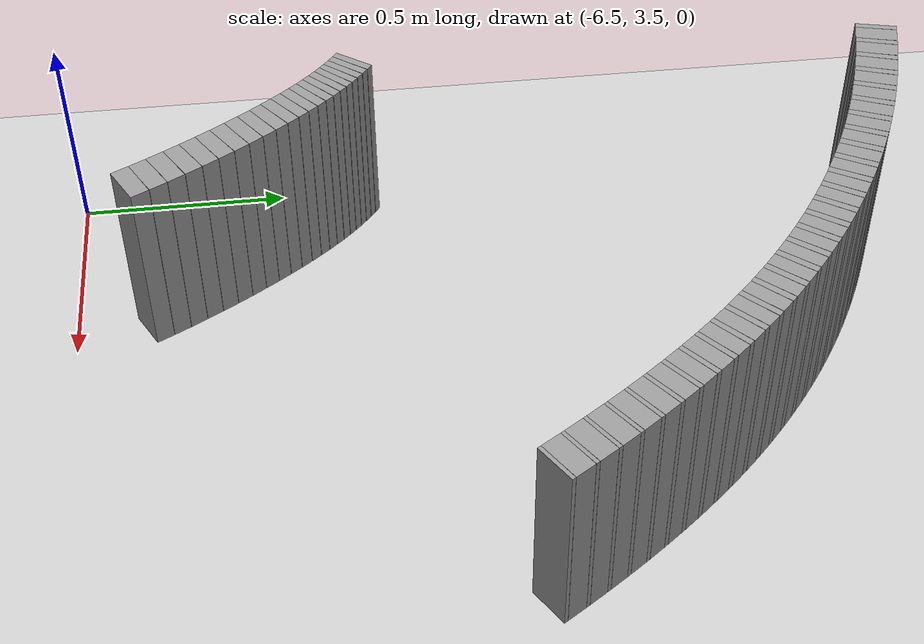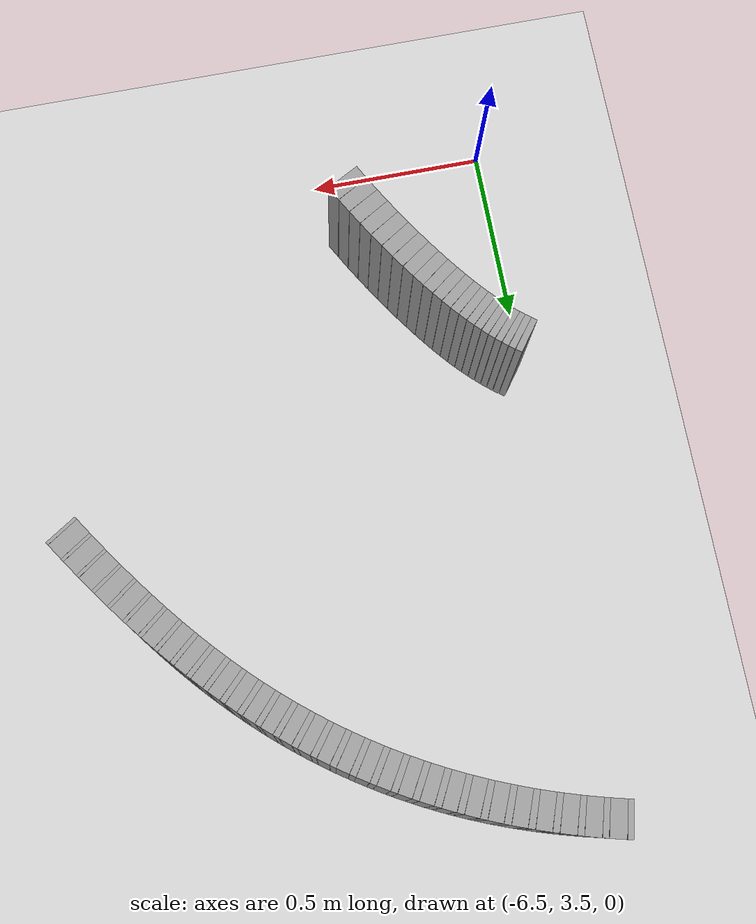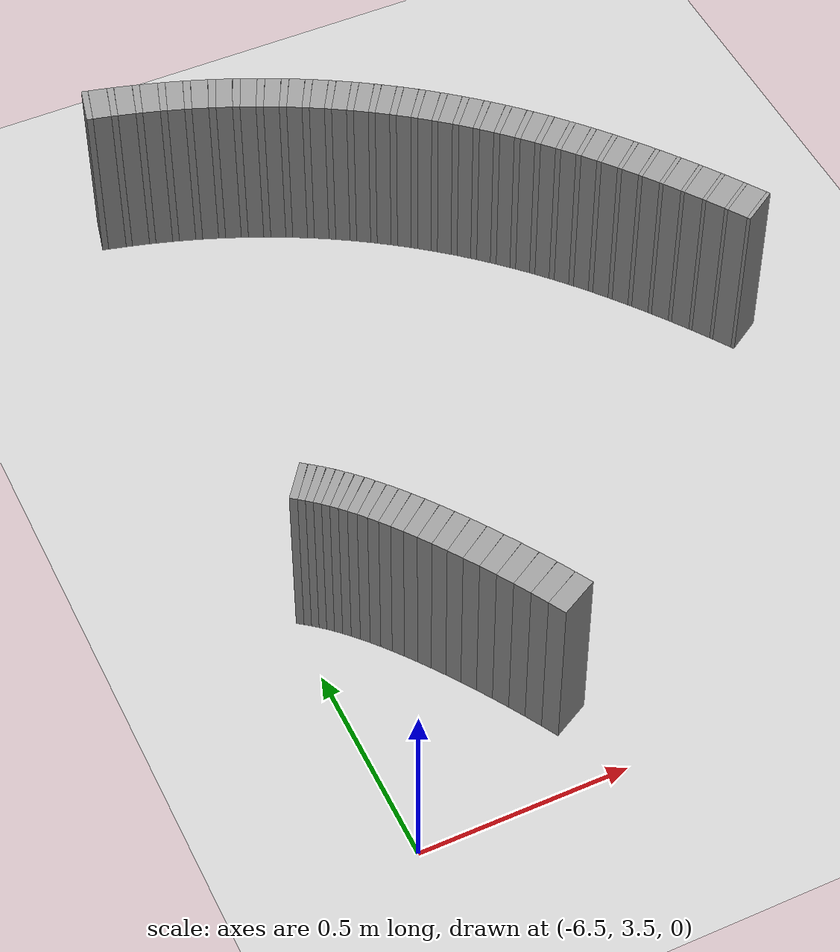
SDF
<sdf version="1.6">
 <world name="default">
  <include><uri>model://ground_plane</uri></include>
  <include><uri>model://sun</uri></include>
  <model name="wall_216_outward">
   <static>true</static>
   <link name="link">
    <collision name="collision">
     <geometry><box><size>0.044780924516160954 0.1 0.45</size></box></geometry>
    </collision>
    <visual name="visual">
     <geometry><box><size>0.044780924516160954 0.1 0.45</size></box></geometry>
     <material>
      <script><uri>file://media/materials/scripts/gazebo.material</uri><name>Gazebo/Gray</name></script>
     </material>
    </visual>
   </link>
   <pose>-6.06367031219288 3.68221405692426 0.225 0 0 2.0650732543696275</pose>
  </model>
  <model name="wall_217_outward">
   <static>true</static>
   <link name="link">
    <collision name="collision">
     <geometry><box><size>0.04440243816377379 0.1 0.45</size></box></geometry>
    </collision>
    <visual name="visual">
     <geometry><box><size>0.04440243816377379 0.1 0.45</size></box></geometry>
     <material>
      <script><uri>file://media/materials/scripts/gazebo.material</uri><name>Gazebo/Gray</name></script>
     </material>
    </visual>
   </link>
   <pose>-6.085157887914838 3.721285223233642 0.225 0 0 2.0822170441764327</pose>
  </model>
  <model name="wall_218_outward">
   <static>true</static>
   <link name="link">
    <collision name="collision">
     <geometry><box><size>0.04388804707926912 0.1 0.45</size></box></geometry>
    </collision>
    <visual name="visual">
     <geometry><box><size>0.04388804707926912 0.1 0.45</size></box></geometry>
     <material>
      <script><uri>file://media/materials/scripts/gazebo.material</uri><name>Gazebo/Gray</name></script>
     </material>
    </visual>
   </link>
   <pose>-6.107077686411589 3.7596022188813896 0.225 0 0 2.098722744135696</pose>
  </model>
  <model name="wall_219_outward">
   <static>true</static>
   <link name="link">
    <collision name="collision">
     <geometry><box><size>0.04318150597429379 0.1 0.45</size></box></geometry>
    </collision>
    <visual name="visual">
     <geometry><box><size>0.04318150597429379 0.1 0.45</size></box></geometry>
     <material>
      <script><uri>file://media/materials/scripts/gazebo.material</uri><name>Gazebo/Gray</name></script>
     </material>
    </visual>
   </link>
   <pose>-6.1293042536394005 3.797033967967364 0.225 0 0 2.1146797943452453</pose>
  </model>
  <model name="wall_220_outward">
   <static>true</static>
   <link name="link">
    <collision name="collision">
     <geometry><box><size>0.04224144139974984 0.1 0.45</size></box></geometry>
    </collision>
    <visual name="visual">
     <geometry><box><size>0.04224144139974984 0.1 0.45</size></box></geometry>
     <material>
      <script><uri>file://media/materials/scripts/gazebo.material</uri><name>Gazebo/Gray</name></script>
     </material>
    </visual>
   </link>
   <pose>-6.151685595551152 3.833410268380656 0.225 0 0 2.1302315081003766</pose>
  </model>
  <model name="wall_221_outward">
   <static>true</static>
   <link name="link">
    <collision name="collision">
     <geometry><box><size>0.04104221579817539 0.1 0.45</size></box></geometry>
    </collision>
    <visual name="visual">
     <geometry><box><size>0.04104221579817539 0.1 0.45</size></box></geometry>
     <material>
      <script><uri>file://media/materials/scripts/gazebo.material</uri><name>Gazebo/Gray</name></script>
     </material>
    </visual>
   </link>
   <pose>-6.174050987513845 3.8685347463617688 0.225 0 0 2.145585741667228</pose>
  </model>
  <model name="wall_222_outward">
   <static>true</static>
   <link name="link">
    <collision name="collision">
     <geometry><box><size>0.0395754504617135 0.1 0.45</size></box></geometry>
    </collision>
    <visual name="visual">
     <geometry><box><size>0.0395754504617135 0.1 0.45</size></box></geometry>
     <material>
      <script><uri>file://media/materials/scripts/gazebo.material</uri><name>Gazebo/Gray</name></script>
     </material>
    </visual>
   </link>
   <pose>-6.196219791889707 3.9021985215496997 0.225 0 0 2.160992154604465</pose>
  </model>
  <model name="wall_223_outward">
   <static>true</static>
   <link name="link">
    <collision name="collision">
     <geometry><box><size>0.037859299514203505 0.1 0.45</size></box></geometry>
    </collision>
    <visual name="visual">
     <geometry><box><size>0.037859299514203505 0.1 0.45</size></box></geometry>
     <material>
      <script><uri>file://media/materials/scripts/gazebo.material</uri><name>Gazebo/Gray</name></script>
     </material>
    </visual>
   </link>
   <pose>-6.2180132884366675 3.934198298757007 0.225 0 0 2.1767401949920258</pose>
  </model>
  <model name="wall_224_outward">
   <static>true</static>
   <link name="link">
    <collision name="collision">
     <geometry><box><size>0.03592979029418136 0.1 0.45</size></box></geometry>
    </collision>
    <visual name="visual">
     <geometry><box><size>0.03592979029418136 0.1 0.45</size></box></geometry>
     <material>
      <script><uri>file://media/materials/scripts/gazebo.material</uri><name>Gazebo/Gray</name></script>
     </material>
    </visual>
   </link>
   <pose>-6.239266338423579 3.964354961263793 0.225 0 0 2.1931001091680136</pose>
  </model>
  <model name="wall_225_outward">
   <static>true</static>
   <link name="link">
    <collision name="collision">
     <geometry><box><size>0.03383203864862255 0.1 0.45</size></box></geometry>
    </collision>
    <visual name="visual">
     <geometry><box><size>0.03383203864862255 0.1 0.45</size></box></geometry>
     <material>
      <script><uri>file://media/materials/scripts/gazebo.material</uri><name>Gazebo/Gray</name></script>
     </material>
    </visual>
   </link>
   <pose>-6.259834405395825 3.992524844884647 0.225 0 0 2.2103545730909073</pose>
  </model>
  <model name="wall_226_outward">
   <static>true</static>
   <link name="link">
    <collision name="collision">
     <geometry><box><size>0.031638722830842445 0.1 0.45</size></box></geometry>
    </collision>
    <visual name="visual">
     <geometry><box><size>0.031638722830842445 0.1 0.45</size></box></geometry>
     <material>
      <script><uri>file://media/materials/scripts/gazebo.material</uri><name>Gazebo/Gray</name></script>
     </material>
    </visual>
   </link>
   <pose>-6.279604026300946 4.018614627386858 0.225 0 0 2.2287438175319862</pose>
  </model>
  <model name="wall_227_outward">
   <static>true</static>
   <link name="link">
    <collision name="collision">
     <geometry><box><size>0.029427104136210677 0.1 0.45</size></box></geometry>
    </collision>
    <visual name="visual">
     <geometry><box><size>0.029427104136210677 0.1 0.45</size></box></geometry>
     <material>
      <script><uri>file://media/materials/scripts/gazebo.material</uri><name>Gazebo/Gray</name></script>
     </material>
    </visual>
   </link>
   <pose>-6.298502332099935 4.042594254121246 0.225 0 0 2.2484456583978103</pose>
  </model>
  <model name="wall_228_outward">
   <static>true</static>
   <link name="link">
    <collision name="collision">
     <geometry><box><size>0.027276517083680726 0.1 0.45</size></box></geometry>
    </collision>
    <visual name="visual">
     <geometry><box><size>0.027276517083680726 0.1 0.45</size></box></geometry>
     <material>
      <script><uri>file://media/materials/scripts/gazebo.material</uri><name>Gazebo/Gray</name></script>
     </material>
    </visual>
   </link>
   <pose>-6.3165003127235755 4.064498783052564 0.225 0 0 2.2695615824998114</pose>
  </model>
  <model name="wall_229_outward">
   <static>true</static>
   <link name="link">
    <collision name="collision">
     <geometry><box><size>0.02527684322904468 0.1 0.45</size></box></geometry>
    </collision>
    <visual name="visual">
     <geometry><box><size>0.02527684322904468 0.1 0.45</size></box></geometry>
     <material>
      <script><uri>file://media/materials/scripts/gazebo.material</uri><name>Gazebo/Gray</name></script>
     </material>
    </visual>
   </link>
   <pose>-6.333619699932298 4.08443123641527 0.225 0 0 2.2921321213293893</pose>
  </model>
  <model name="wall_230_outward">
   <static>true</static>
   <link name="link">
    <collision name="collision">
     <geometry><box><size>0.023497304208381736 0.1 0.45</size></box></geometry>
    </collision>
    <visual name="visual">
     <geometry><box><size>0.023497304208381736 0.1 0.45</size></box></geometry>
     <material>
      <script><uri>file://media/materials/scripts/gazebo.material</uri><name>Gazebo/Gray</name></script>
     </material>
    </visual>
   </link>
   <pose>-6.349933422297197 4.102555995165817 0.225 0 0 2.3160512276975473</pose>
  </model>
  <model name="wall_231_outward">
   <static>true</static>
   <link name="link">
    <collision name="collision">
     <geometry><box><size>0.02199238313984936 0.1 0.45</size></box></geometry>
    </collision>
    <visual name="visual">
     <geometry><box><size>0.02199238313984936 0.1 0.45</size></box></geometry>
     <material>
      <script><uri>file://media/materials/scripts/gazebo.material</uri><name>Gazebo/Gray</name></script>
     </material>
    </visual>
   </link>
   <pose>-6.365558941167409 4.119081410049343 0.225 0 0 2.3412051023473754</pose>
  </model>
  <model name="wall_232_outward">
   <static>true</static>
   <link name="link">
    <collision name="collision">
     <geometry><box><size>0.0208073756994362 0.1 0.45</size></box></geometry>
    </collision>
    <visual name="visual">
     <geometry><box><size>0.0208073756994362 0.1 0.45</size></box></geometry>
     <material>
      <script><uri>file://media/materials/scripts/gazebo.material</uri><name>Gazebo/Gray</name></script>
     </material>
    </visual>
   </link>
   <pose>-6.380655220409503 4.134246465988296 0.225 0 0 2.367362640983234</pose>
  </model>
  <model name="wall_233_outward">
   <static>true</static>
   <link name="link">
    <collision name="collision">
     <geometry><box><size>0.019931675059611947 0.1 0.45</size></box></geometry>
    </collision>
    <visual name="visual">
     <geometry><box><size>0.019931675059611947 0.1 0.45</size></box></geometry>
     <material>
      <script><uri>file://media/materials/scripts/gazebo.material</uri><name>Gazebo/Gray</name></script>
     </material>
    </visual>
   </link>
   <pose>-6.3954035387462085 4.148293870349168 0.225 0 0 2.394277111435847</pose>
  </model>
  <model name="wall_234_outward">
   <static>true</static>
   <link name="link">
    <collision name="collision">
     <geometry><box><size>0.019338645876401925 0.1 0.45</size></box></geometry>
    </collision>
    <visual name="visual">
     <geometry><box><size>0.019338645876401925 0.1 0.45</size></box></geometry>
     <material>
      <script><uri>file://media/materials/scripts/gazebo.material</uri><name>Gazebo/Gray</name></script>
     </material>
    </visual>
   </link>
   <pose>-6.409984154207429 4.161441965454124 0.225 0 0 2.4217591098834705</pose>
  </model>
  <model name="wall_235_outward">
   <static>true</static>
   <link name="link">
    <collision name="collision">
     <geometry><box><size>0.01899254672302339 0.1 0.45</size></box></geometry>
    </collision>
    <visual name="visual">
     <geometry><box><size>0.01899254672302339 0.1 0.45</size></box></geometry>
     <material>
      <script><uri>file://media/materials/scripts/gazebo.material</uri><name>Gazebo/Gray</name></script>
     </material>
    </visual>
   </link>
   <pose>-6.424566725065006 4.173875686151266 0.225 0 0 2.4496253966826433</pose>
  </model>
  <model name="wall_236_outward">
   <static>true</static>
   <link name="link">
    <collision name="collision">
     <geometry><box><size>0.018829511272999387 0.1 0.45</size></box></geometry>
    </collision>
    <visual name="visual">
     <geometry><box><size>0.018829511272999387 0.1 0.45</size></box></geometry>
     <material>
      <script><uri>file://media/materials/scripts/gazebo.material</uri><name>Gazebo/Gray</name></script>
     </material>
    </visual>
   </link>
   <pose>-6.439294258474115 4.185735532357157 0.225 0 0 2.4777721161694273</pose>
  </model>
  <model name="wall_237_outward">
   <static>true</static>
   <link name="link">
    <collision name="collision">
     <geometry><box><size>0.01879629158192308 0.1 0.45</size></box></geometry>
    </collision>
    <visual name="visual">
     <geometry><box><size>0.01879629158192308 0.1 0.45</size></box></geometry>
     <material>
      <script><uri>file://media/materials/scripts/gazebo.material</uri><name>Gazebo/Gray</name></script>
     </material>
    </visual>
   </link>
   <pose>-6.454273625836549 4.197114126436808 0.225 0 0 2.506181999685377</pose>
  </model>
  <model name="wall_158_inward">
   <static>true</static>
   <link name="link">
    <collision name="collision">
     <geometry><box><size>0.009212449645418997 0.1 0.45</size></box></geometry>
    </collision>
    <visual name="visual">
     <geometry><box><size>0.009212449645418997 0.1 0.45</size></box></geometry>
     <material>
      <script><uri>file://media/materials/scripts/gazebo.material</uri><name>Gazebo/Gray</name></script>
     </material>
    </visual>
   </link>
   <pose>-5.150747610302885 4.49594961282187 0.225 0 0 2.137908624883748</pose>
  </model>
  <model name="wall_159_inward">
   <static>true</static>
   <link name="link">
    <collision name="collision">
     <geometry><box><size>0.05027059166936365 0.1 0.45</size></box></geometry>
    </collision>
    <visual name="visual">
     <geometry><box><size>0.05027059166936365 0.1 0.45</size></box></geometry>
     <material>
      <script><uri>file://media/materials/scripts/gazebo.material</uri><name>Gazebo/Gray</name></script>
     </material>
    </visual>
   </link>
   <pose>-5.166887074128351 4.52093098457539 0.225 0 0 2.1455857416672335</pose>
  </model>
  <model name="wall_160_inward">
   <static>true</static>
   <link name="link">
    <collision name="collision">
     <geometry><box><size>0.009243756341894293 0.1 0.45</size></box></geometry>
    </collision>
    <visual name="visual">
     <geometry><box><size>0.009243756341894293 0.1 0.45</size></box></geometry>
     <material>
      <script><uri>file://media/materials/scripts/gazebo.material</uri><name>Gazebo/Gray</name></script>
     </material>
    </visual>
   </link>
   <pose>-5.183094608766223 4.545886912372321 0.225 0 0 2.153288948135871</pose>
  </model>
  <model name="wall_161_inward">
   <static>true</static>
   <link name="link">
    <collision name="collision">
     <geometry><box><size>0.04892197552265419 0.1 0.45</size></box></geometry>
    </collision>
    <visual name="visual">
     <geometry><box><size>0.04892197552265419 0.1 0.45</size></box></geometry>
     <material>
      <script><uri>file://media/materials/scripts/gazebo.material</uri><name>Gazebo/Gray</name></script>
     </material>
    </visual>
   </link>
   <pose>-5.199250257538193 4.570069579614955 0.225 0 0 2.1609921546044624</pose>
  </model>
  <model name="wall_162_inward">
   <static>true</static>
   <link name="link">
    <collision name="collision">
     <geometry><box><size>0.009448726594687328 0.1 0.45</size></box></geometry>
    </collision>
    <visual name="visual">
     <geometry><box><size>0.009448726594687328 0.1 0.45</size></box></geometry>
     <material>
      <script><uri>file://media/materials/scripts/gazebo.material</uri><name>Gazebo/Gray</name></script>
     </material>
    </visual>
   </link>
   <pose>-5.215523422965955 4.59429687080717 0.225 0 0 2.168866174798257</pose>
  </model>
  <model name="wall_163_inward">
   <static>true</static>
   <link name="link">
    <collision name="collision">
     <geometry><box><size>0.047491892993713064 0.1 0.45</size></box></geometry>
    </collision>
    <visual name="visual">
     <geometry><box><size>0.047491892993713064 0.1 0.45</size></box></geometry>
     <material>
      <script><uri>file://media/materials/scripts/gazebo.material</uri><name>Gazebo/Gray</name></script>
     </material>
    </visual>
   </link>
   <pose>-5.231707690747726 4.617719532071899 0.225 0 0 2.176740194992031</pose>
  </model>
  <model name="wall_164_inward">
   <static>true</static>
   <link name="link">
    <collision name="collision">
     <geometry><box><size>0.009815839038995237 0.1 0.45</size></box></geometry>
    </collision>
    <visual name="visual">
     <geometry><box><size>0.009815839038995237 0.1 0.45</size></box></geometry>
     <material>
      <script><uri>file://media/materials/scripts/gazebo.material</uri><name>Gazebo/Gray</name></script>
     </material>
    </visual>
   </link>
   <pose>-5.248060065958594 4.641249004326639 0.225 0 0 2.1849201520800294</pose>
  </model>
  <model name="wall_165_inward">
   <static>true</static>
   <link name="link">
    <collision name="collision">
     <geometry><box><size>0.04601434162103739 0.1 0.45</size></box></geometry>
    </collision>
    <visual name="visual">
     <geometry><box><size>0.04601434162103739 0.1 0.45</size></box></geometry>
     <material>
      <script><uri>file://media/materials/scripts/gazebo.material</uri><name>Gazebo/Gray</name></script>
     </material>
    </visual>
   </link>
   <pose>-5.264299296671725 4.66395433626717 0.225 0 0 2.193100109168019</pose>
  </model>
  <model name="wall_166_inward">
   <static>true</static>
   <link name="link">
    <collision name="collision">
     <geometry><box><size>0.010352549930731281 0.1 0.45</size></box></geometry>
    </collision>
    <visual name="visual">
     <geometry><box><size>0.010352549930731281 0.1 0.45</size></box></geometry>
     <material>
      <script><uri>file://media/materials/scripts/gazebo.material</uri><name>Gazebo/Gray</name></script>
     </material>
    </visual>
   </link>
   <pose>-5.280763842737225 4.686828261921539 0.225 0 0 2.201727341129436</pose>
  </model>
  <model name="wall_167_inward">
   <static>true</static>
   <link name="link">
    <collision name="collision">
     <geometry><box><size>0.04452543505503095 0.1 0.45</size></box></geometry>
    </collision>
    <visual name="visual">
     <geometry><box><size>0.04452543505503095 0.1 0.45</size></box></geometry>
     <material>
      <script><uri>file://media/materials/scripts/gazebo.material</uri><name>Gazebo/Gray</name></script>
     </material>
    </visual>
   </link>
   <pose>-5.29710461451293 4.708870696219765 0.225 0 0 2.2103545730909007</pose>
  </model>
  <model name="wall_168_inward">
   <static>true</static>
   <link name="link">
    <collision name="collision">
     <geometry><box><size>0.011033391200657267 0.1 0.45</size></box></geometry>
    </collision>
    <visual name="visual">
     <geometry><box><size>0.011033391200657267 0.1 0.45</size></box></geometry>
     <material>
      <script><uri>file://media/materials/scripts/gazebo.material</uri><name>Gazebo/Gray</name></script>
     </material>
    </visual>
   </link>
   <pose>-5.313725067809143 4.731129311248068 0.225 0 0 2.219549195311439</pose>
  </model>
  <model name="wall_169_inward">
   <static>true</static>
   <link name="link">
    <collision name="collision">
     <geometry><box><size>0.043066395088145255 0.1 0.45</size></box></geometry>
    </collision>
    <visual name="visual">
     <geometry><box><size>0.043066395088145255 0.1 0.45</size></box></geometry>
     <material>
      <script><uri>file://media/materials/scripts/gazebo.material</uri><name>Gazebo/Gray</name></script>
     </material>
    </visual>
   </link>
   <pose>-5.330225640454473 4.752563344437336 0.225 0 0 2.2287438175319916</pose>
  </model>
  <model name="wall_170_inward">
   <static>true</static>
   <link name="link">
    <collision name="collision">
     <geometry><box><size>0.011820913332505104 0.1 0.45</size></box></geometry>
    </collision>
    <visual name="visual">
     <geometry><box><size>0.011820913332505104 0.1 0.45</size></box></geometry>
     <material>
      <script><uri>file://media/materials/scripts/gazebo.material</uri><name>Gazebo/Gray</name></script>
     </material>
    </visual>
   </link>
   <pose>-5.347053166087565 4.774242278615979 0.225 0 0 2.238594737964915</pose>
  </model>
  <model name="wall_171_inward">
   <static>true</static>
   <link name="link">
    <collision name="collision">
     <geometry><box><size>0.04167286021277338 0.1 0.45</size></box></geometry>
    </collision>
    <visual name="visual">
     <geometry><box><size>0.04167286021277338 0.1 0.45</size></box></geometry>
     <material>
      <script><uri>file://media/materials/scripts/gazebo.material</uri><name>Gazebo/Gray</name></script>
     </material>
    </visual>
   </link>
   <pose>-5.363776949151294 4.795115684694887 0.225 0 0 2.2484456583978076</pose>
  </model>
  <model name="wall_172_inward">
   <static>true</static>
   <link name="link">
    <collision name="collision">
     <geometry><box><size>0.012669319082112222 0.1 0.45</size></box></geometry>
    </collision>
    <visual name="visual">
     <geometry><box><size>0.012669319082112222 0.1 0.45</size></box></geometry>
     <material>
      <script><uri>file://media/materials/scripts/gazebo.material</uri><name>Gazebo/Gray</name></script>
     </material>
    </visual>
   </link>
   <pose>-5.380864111180409 4.816241079208807 0.225 0 0 2.2590036204488295</pose>
  </model>
  <model name="wall_173_inward">
   <static>true</static>
   <link name="link">
    <collision name="collision">
     <geometry><box><size>0.04038297882097858 0.1 0.45</size></box></geometry>
    </collision>
    <visual name="visual">
     <geometry><box><size>0.04038297882097858 0.1 0.45</size></box></geometry>
     <material>
      <script><uri>file://media/materials/scripts/gazebo.material</uri><name>Gazebo/Gray</name></script>
     </material>
    </visual>
   </link>
   <pose>-5.397876228797193 4.836593233265502 0.225 0 0 2.2695615824997795</pose>
  </model>
  <model name="wall_174_inward">
   <static>true</static>
   <link name="link">
    <collision name="collision">
     <geometry><box><size>0.01354203584727704 0.1 0.45</size></box></geometry>
    </collision>
    <visual name="visual">
     <geometry><box><size>0.01354203584727704 0.1 0.45</size></box></geometry>
     <material>
      <script><uri>file://media/materials/scripts/gazebo.material</uri><name>Gazebo/Gray</name></script>
     </material>
    </visual>
   </link>
   <pose>-5.415278702547733 4.857187244467517 0.225 0 0 2.2808468519146268</pose>
  </model>
  <model name="wall_175_inward">
   <static>true</static>
   <link name="link">
    <collision name="collision">
     <geometry><box><size>0.039224366392083834 0.1 0.45</size></box></geometry>
    </collision>
    <visual name="visual">
     <geometry><box><size>0.039224366392083834 0.1 0.45</size></box></geometry>
     <material>
      <script><uri>file://media/materials/scripts/gazebo.material</uri><name>Gazebo/Gray</name></script>
     </material>
    </visual>
   </link>
   <pose>-5.432644197260944 4.877049167398689 0.225 0 0 2.2921321213293764</pose>
  </model>
  <model name="wall_176_inward">
   <static>true</static>
   <link name="link">
    <collision name="collision">
     <geometry><box><size>0.014351121706200145 0.1 0.45</size></box></geometry>
    </collision>
    <visual name="visual">
     <geometry><box><size>0.014351121706200145 0.1 0.45</size></box></geometry>
     <material>
      <script><uri>file://media/materials/scripts/gazebo.material</uri><name>Gazebo/Gray</name></script>
     </material>
    </visual>
   </link>
   <pose>-5.4503986123959685 4.897107677966077 0.225 0 0 2.304091674513459</pose>
  </model>
  <model name="wall_177_inward">
   <static>true</static>
   <link name="link">
    <collision name="collision">
     <geometry><box><size>0.03821993855803463 0.1 0.45</size></box></geometry>
    </collision>
    <visual name="visual">
     <geometry><box><size>0.03821993855803463 0.1 0.45</size></box></geometry>
     <material>
      <script><uri>file://media/materials/scripts/gazebo.material</uri><name>Gazebo/Gray</name></script>
     </material>
    </visual>
   </link>
   <pose>-5.468160971170667 4.916483128728354 0.225 0 0 2.3160512276975673</pose>
  </model>
  <model name="wall_178_inward">
   <static>true</static>
   <link name="link">
    <collision name="collision">
     <geometry><box><size>0.015091926910663538 0.1 0.45</size></box></geometry>
    </collision>
    <visual name="visual">
     <geometry><box><size>0.015091926910663538 0.1 0.45</size></box></geometry>
     <material>
      <script><uri>file://media/materials/scripts/gazebo.material</uri><name>Gazebo/Gray</name></script>
     </material>
    </visual>
   </link>
   <pose>-5.4863072768331 4.9360081775397315 0.225 0 0 2.3286281650224767</pose>
  </model>
  <model name="wall_179_inward">
   <static>true</static>
   <link name="link">
    <collision name="collision">
     <geometry><box><size>0.03738665249941005 0.1 0.45</size></box></geometry>
    </collision>
    <visual name="visual">
     <geometry><box><size>0.03738665249941005 0.1 0.45</size></box></geometry>
     <material>
      <script><uri>file://media/materials/scripts/gazebo.material</uri><name>Gazebo/Gray</name></script>
     </material>
    </visual>
   </link>
   <pose>-5.504512549591027 4.954903839890714 0.225 0 0 2.341205102347362</pose>
  </model>
  <model name="wall_180_inward">
   <static>true</static>
   <link name="link">
    <collision name="collision">
     <geometry><box><size>0.01569407574965033 0.1 0.45</size></box></geometry>
    </collision>
    <visual name="visual">
     <geometry><box><size>0.01569407574965033 0.1 0.45</size></box></geometry>
     <material>
      <script><uri>file://media/materials/scripts/gazebo.material</uri><name>Gazebo/Gray</name></script>
     </material>
    </visual>
   </link>
   <pose>-5.5230691995930465 4.973877942700954 0.225 0 0 2.354283871665306</pose>
  </model>
  <model name="wall_181_inward">
   <static>true</static>
   <link name="link">
    <collision name="collision">
     <geometry><box><size>0.03672991334110799 0.1 0.45</size></box></geometry>
    </collision>
    <visual name="visual">
     <geometry><box><size>0.03672991334110799 0.1 0.45</size></box></geometry>
     <material>
      <script><uri>file://media/materials/scripts/gazebo.material</uri><name>Gazebo/Gray</name></script>
     </material>
    </visual>
   </link>
   <pose>-5.541737483707662 4.9922773768201125 0.225 0 0 2.367362640983239</pose>
  </model>
  <model name="wall_182_inward">
   <static>true</static>
   <link name="link">
    <collision name="collision">
     <geometry><box><size>0.01614819486250914 0.1 0.45</size></box></geometry>
    </collision>
    <visual name="visual">
     <geometry><box><size>0.01614819486250914 0.1 0.45</size></box></geometry>
     <material>
      <script><uri>file://media/materials/scripts/gazebo.material</uri><name>Gazebo/Gray</name></script>
     </material>
    </visual>
   </link>
   <pose>-5.560715782000797 5.010684465751531 0.225 0 0 2.380819876209505</pose>
  </model>
  <model name="wall_183_inward">
   <static>true</static>
   <link name="link">
    <collision name="collision">
     <geometry><box><size>0.03625162211912161 0.1 0.45</size></box></geometry>
    </collision>
    <visual name="visual">
     <geometry><box><size>0.03625162211912161 0.1 0.45</size></box></geometry>
     <material>
      <script><uri>file://media/materials/scripts/gazebo.material</uri><name>Gazebo/Gray</name></script>
     </material>
    </visual>
   </link>
   <pose>-5.579859451841976 5.028571013960886 0.225 0 0 2.394277111435848</pose>
  </model>
  <model name="wall_184_inward">
   <static>true</static>
   <link name="link">
    <collision name="collision">
     <geometry><box><size>0.016488680171939933 0.1 0.45</size></box></geometry>
    </collision>
    <visual name="visual">
     <geometry><box><size>0.016488680171939933 0.1 0.45</size></box></geometry>
     <material>
      <script><uri>file://media/materials/scripts/gazebo.material</uri><name>Gazebo/Gray</name></script>
     </material>
    </visual>
   </link>
   <pose>-5.599278804879004 5.046410447356056 0.225 0 0 2.4080181106596816</pose>
  </model>
  <model name="wall_185_inward">
   <static>true</static>
   <link name="link">
    <collision name="collision">
     <geometry><box><size>0.035944191408352574 0.1 0.45</size></box></geometry>
    </collision>
    <visual name="visual">
     <geometry><box><size>0.035944191408352574 0.1 0.45</size></box></geometry>
     <material>
      <script><uri>file://media/materials/scripts/gazebo.material</uri><name>Gazebo/Gray</name></script>
     </material>
    </visual>
   </link>
   <pose>-5.618916081310967 5.063778547538601 0.225 0 0 2.4217591098834452</pose>
  </model>
  <model name="wall_186_inward">
   <static>true</static>
   <link name="link">
    <collision name="collision">
     <geometry><box><size>0.016719231109630146 0.1 0.45</size></box></geometry>
    </collision>
    <visual name="visual">
     <geometry><box><size>0.016719231109630146 0.1 0.45</size></box></geometry>
     <material>
      <script><uri>file://media/materials/scripts/gazebo.material</uri><name>Gazebo/Gray</name></script>
     </material>
    </visual>
   </link>
   <pose>-5.638791477676969 5.081049866861838 0.225 0 0 2.4356922532830327</pose>
  </model>
  <model name="wall_187_inward">
   <static>true</static>
   <link name="link">
    <collision name="collision">
     <geometry><box><size>0.03579754714252322 0.1 0.45</size></box></geometry>
    </collision>
    <visual name="visual">
     <geometry><box><size>0.03579754714252322 0.1 0.45</size></box></geometry>
     <material>
      <script><uri>file://media/materials/scripts/gazebo.material</uri><name>Gazebo/Gray</name></script>
     </material>
    </visual>
   </link>
   <pose>-5.658935294793201 5.097893280545498 0.225 0 0 2.449625396682662</pose>
  </model>
  <model name="wall_188_inward">
   <static>true</static>
   <link name="link">
    <collision name="collision">
     <geometry><box><size>0.016887474225192475 0.1 0.45</size></box></geometry>
    </collision>
    <visual name="visual">
     <geometry><box><size>0.016887474225192475 0.1 0.45</size></box></geometry>
     <material>
      <script><uri>file://media/materials/scripts/gazebo.material</uri><name>Gazebo/Gray</name></script>
     </material>
    </visual>
   </link>
   <pose>-5.679293999583475 5.114609173451877 0.225 0 0 2.463698756426045</pose>
  </model>
  <model name="wall_189_inward">
   <static>true</static>
   <link name="link">
    <collision name="collision">
     <geometry><box><size>0.03579762299234956 0.1 0.45</size></box></geometry>
    </collision>
    <visual name="visual">
     <geometry><box><size>0.03579762299234956 0.1 0.45</size></box></geometry>
     <material>
      <script><uri>file://media/materials/scripts/gazebo.material</uri><name>Gazebo/Gray</name></script>
     </material>
    </visual>
   </link>
   <pose>-5.699968678823494 5.130932701646794 0.225 0 0 2.477772116169452</pose>
  </model>
  <model name="wall_190_inward">
   <static>true</static>
   <link name="link">
    <collision name="collision">
     <geometry><box><size>0.017045356859682913 0.1 0.45</size></box></geometry>
    </collision>
    <visual name="visual">
     <geometry><box><size>0.017045356859682913 0.1 0.45</size></box></geometry>
     <material>
      <script><uri>file://media/materials/scripts/gazebo.material</uri><name>Gazebo/Gray</name></script>
     </material>
    </visual>
   </link>
   <pose>-5.720853319346825 5.1471159071354595 0.225 0 0 2.491977057927387</pose>
  </model>
  <model name="wall_191_inward">
   <static>true</static>
   <link name="link">
    <collision name="collision">
     <geometry><box><size>0.035929699706146956 0.1 0.45</size></box></geometry>
    </collision>
    <visual name="visual">
     <geometry><box><size>0.035929699706146956 0.1 0.45</size></box></geometry>
     <material>
      <script><uri>file://media/materials/scripts/gazebo.material</uri><name>Gazebo/Gray</name></script>
     </material>
    </visual>
   </link>
   <pose>-5.742098682606995 5.162933391154208 0.225 0 0 2.5061819996854</pose>
  </model>
  <model name="wall_192_inward">
   <static>true</static>
   <link name="link">
    <collision name="collision">
     <geometry><box><size>0.01721796689647526 0.1 0.45</size></box></geometry>
    </collision>
    <visual name="visual">
     <geometry><box><size>0.01721796689647526 0.1 0.45</size></box></geometry>
     <material>
      <script><uri>file://media/materials/scripts/gazebo.material</uri><name>Gazebo/Gray</name></script>
     </material>
    </visual>
   </link>
   <pose>-5.763558648146915 5.178605233848824 0.225 0 0 2.520530797801645</pose>
  </model>
  <model name="wall_193_inward">
   <static>true</static>
   <link name="link">
    <collision name="collision">
     <geometry><box><size>0.03617940216058382 0.1 0.45</size></box></geometry>
    </collision>
    <visual name="visual">
     <geometry><box><size>0.03617940216058382 0.1 0.45</size></box></geometry>
     <material>
      <script><uri>file://media/materials/scripts/gazebo.material</uri><name>Gazebo/Gray</name></script>
     </material>
    </visual>
   </link>
   <pose>-5.7854211688909984 5.193929002284447 0.225 0 0 2.5348795959178716</pose>
  </model>
  <model name="wall_194_inward">
   <static>true</static>
   <link name="link">
    <collision name="collision">
     <geometry><box><size>0.017441948894063888 0.1 0.45</size></box></geometry>
    </collision>
    <visual name="visual">
     <geometry><box><size>0.017441948894063888 0.1 0.45</size></box></geometry>
     <material>
      <script><uri>file://media/materials/scripts/gazebo.material</uri><name>Gazebo/Gray</name></script>
     </material>
    </visual>
   </link>
   <pose>-5.807518368529303 5.2091109902797434 0.225 0 0 2.5494150651662024</pose>
  </model>
  <model name="wall_195_inward">
   <static>true</static>
   <link name="link">
    <collision name="collision">
     <geometry><box><size>0.03653238952917413 0.1 0.45</size></box></geometry>
    </collision>
    <visual name="visual">
     <geometry><box><size>0.03653238952917413 0.1 0.45</size></box></geometry>
     <material>
      <script><uri>file://media/materials/scripts/gazebo.material</uri><name>Gazebo/Gray</name></script>
     </material>
    </visual>
   </link>
   <pose>-5.830056948409269 5.223953027301944 0.225 0 0 2.563950534414498</pose>
  </model>
  <model name="wall_196_inward">
   <static>true</static>
   <link name="link">
    <collision name="collision">
     <geometry><box><size>0.017686599624194783 0.1 0.45</size></box></geometry>
    </collision>
    <visual name="visual">
     <geometry><box><size>0.017686599624194783 0.1 0.45</size></box></geometry>
     <material>
      <script><uri>file://media/materials/scripts/gazebo.material</uri><name>Gazebo/Gray</name></script>
     </material>
    </visual>
   </link>
   <pose>-5.852838362629301 5.238646453383274 0.225 0 0 2.578689901114122</pose>
  </model>
  <model name="wall_197_inward">
   <static>true</static>
   <link name="link">
    <collision name="collision">
     <geometry><box><size>0.03697710441775525 0.1 0.45</size></box></geometry>
    </collision>
    <visual name="visual">
     <geometry><box><size>0.03697710441775525 0.1 0.45</size></box></geometry>
     <material>
      <script><uri>file://media/materials/scripts/gazebo.material</uri><name>Gazebo/Gray</name></script>
     </material>
    </visual>
   </link>
   <pose>-5.876096892630406 5.253000386557435 0.225 0 0 2.5934292678137805</pose>
  </model>
  <model name="wall_198_inward">
   <static>true</static>
   <link name="link">
    <collision name="collision">
     <geometry><box><size>0.017984247850113 0.1 0.45</size></box></geometry>
    </collision>
    <visual name="visual">
     <geometry><box><size>0.017984247850113 0.1 0.45</size></box></geometry>
     <material>
      <script><uri>file://media/materials/scripts/gazebo.material</uri><name>Gazebo/Gray</name></script>
     </material>
    </visual>
   </link>
   <pose>-5.899620550414735 5.267205587788477 0.225 0 0 2.6084167021034466</pose>
  </model>
  <model name="wall_199_inward">
   <static>true</static>
   <link name="link">
    <collision name="collision">
     <geometry><box><size>0.03750417494930557 0.1 0.45</size></box></geometry>
    </collision>
    <visual name="visual">
     <geometry><box><size>0.03750417494930557 0.1 0.45</size></box></geometry>
     <material>
      <script><uri>file://media/materials/scripts/gazebo.material</uri><name>Gazebo/Gray</name></script>
     </material>
    </visual>
   </link>
   <pose>-5.923654815136141 5.281064069306829 0.225 0 0 2.623404136393115</pose>
  </model>
  <model name="wall_200_inward">
   <static>true</static>
   <link name="link">
    <collision name="collision">
     <geometry><box><size>0.018244450562059446 0.1 0.45</size></box></geometry>
    </collision>
    <visual name="visual">
     <geometry><box><size>0.018244450562059446 0.1 0.45</size></box></geometry>
     <material>
      <script><uri>file://media/materials/scripts/gazebo.material</uri><name>Gazebo/Gray</name></script>
     </material>
    </visual>
   </link>
   <pose>-5.947937507081983 5.294749413292685 0.225 0 0 2.6386084309856654</pose>
  </model>
  <model name="wall_201_inward">
   <static>true</static>
   <link name="link">
    <collision name="collision">
     <geometry><box><size>0.038106898923021416 0.1 0.45</size></box></geometry>
    </collision>
    <visual name="visual">
     <geometry><box><size>0.038106898923021416 0.1 0.45</size></box></geometry>
     <material>
      <script><uri>file://media/materials/scripts/gazebo.material</uri><name>Gazebo/Gray</name></script>
     </material>
    </visual>
   </link>
   <pose>-5.972761276577584 5.308076413565662 0.225 0 0 2.653812725578155</pose>
  </model>
  <model name="wall_202_inward">
   <static>true</static>
   <link name="link">
    <collision name="collision">
     <geometry><box><size>0.018476055871848814 0.1 0.45</size></box></geometry>
    </collision>
    <visual name="visual">
     <geometry><box><size>0.018476055871848814 0.1 0.45</size></box></geometry>
     <material>
      <script><uri>file://media/materials/scripts/gazebo.material</uri><name>Gazebo/Gray</name></script>
     </material>
    </visual>
   </link>
   <pose>-5.9978189682430525 5.321209503569394 0.225 0 0 2.6692100471906466</pose>
  </model>
  <model name="wall_203_inward">
   <static>true</static>
   <link name="link">
    <collision name="collision">
     <geometry><box><size>0.03877889275510427 0.1 0.45</size></box></geometry>
    </collision>
    <visual name="visual">
     <geometry><box><size>0.03877889275510427 0.1 0.45</size></box></geometry>
     <material>
      <script><uri>file://media/materials/scripts/gazebo.material</uri><name>Gazebo/Gray</name></script>
     </material>
    </visual>
   </link>
   <pose>-6.023445142588269 5.333968383200989 0.225 0 0 2.6846073688030714</pose>
  </model>
  <model name="wall_204_inward">
   <static>true</static>
   <link name="link">
    <collision name="collision">
     <geometry><box><size>0.018600846440528004 0.1 0.45</size></box></geometry>
    </collision>
    <visual name="visual">
     <geometry><box><size>0.018600846440528004 0.1 0.45</size></box></geometry>
     <material>
      <script><uri>file://media/materials/scripts/gazebo.material</uri><name>Gazebo/Gray</name></script>
     </material>
    </visual>
   </link>
   <pose>-6.049253661375808 5.346497774434823 0.225 0 0 2.7001086949678683</pose>
  </model>
  <model name="wall_205_inward">
   <static>true</static>
   <link name="link">
    <collision name="collision">
     <geometry><box><size>0.03951602412739921 0.1 0.45</size></box></geometry>
    </collision>
    <visual name="visual">
     <geometry><box><size>0.03951602412739921 0.1 0.45</size></box></geometry>
     <material>
      <script><uri>file://media/materials/scripts/gazebo.material</uri><name>Gazebo/Gray</name></script>
     </material>
    </visual>
   </link>
   <pose>-6.075654647346164 5.358635996975437 0.225 0 0 2.7156100211326715</pose>
  </model>
  <model name="wall_206_inward">
   <static>true</static>
   <link name="link">
    <collision name="collision">
     <geometry><box><size>0.018621262311446497 0.1 0.45</size></box></geometry>
    </collision>
    <visual name="visual">
     <geometry><box><size>0.018621262311446497 0.1 0.45</size></box></geometry>
     <material>
      <script><uri>file://media/materials/scripts/gazebo.material</uri><name>Gazebo/Gray</name></script>
     </material>
    </visual>
   </link>
   <pose>-6.1021841974423925 5.370515588309123 0.225 0 0 2.7311283625697613</pose>
  </model>
  <model name="wall_207_inward">
   <static>true</static>
   <link name="link">
    <collision name="collision">
     <geometry><box><size>0.04031290008731359 0.1 0.45</size></box></geometry>
    </collision>
    <visual name="visual">
     <geometry><box><size>0.04031290008731359 0.1 0.45</size></box></geometry>
     <material>
      <script><uri>file://media/materials/scripts/gazebo.material</uri><name>Gazebo/Gray</name></script>
     </material>
    </visual>
   </link>
   <pose>-6.129326200451008 5.3819862183566265 0.225 0 0 2.74664670400683</pose>
  </model>
  <model name="wall_208_inward">
   <static>true</static>
   <link name="link">
    <collision name="collision">
     <geometry><box><size>0.01847682130100246 0.1 0.45</size></box></geometry>
    </collision>
    <visual name="visual">
     <geometry><box><size>0.01847682130100246 0.1 0.45</size></box></geometry>
     <material>
      <script><uri>file://media/materials/scripts/gazebo.material</uri><name>Gazebo/Gray</name></script>
     </material>
    </visual>
   </link>
   <pose>-6.156511887091915 5.393164417104955 0.225 0 0 2.7620446635525067</pose>
  </model>
  <model name="wall_209_inward">
   <static>true</static>
   <link name="link">
    <collision name="collision">
     <geometry><box><size>0.04116335573283349 0.1 0.45</size></box></geometry>
    </collision>
    <visual name="visual">
     <geometry><box><size>0.04116335573283349 0.1 0.45</size></box></geometry>
     <material>
      <script><uri>file://media/materials/scripts/gazebo.material</uri><name>Gazebo/Gray</name></script>
     </material>
    </visual>
   </link>
   <pose>-6.1843248921782195 5.403917525771327 0.225 0 0 2.7774426230982248</pose>
  </model>
  <model name="wall_210_inward">
   <static>true</static>
   <link name="link">
    <collision name="collision">
     <geometry><box><size>0.018172024397617958 0.1 0.45</size></box></geometry>
    </collision>
    <visual name="visual">
     <geometry><box><size>0.018172024397617958 0.1 0.45</size></box></geometry>
     <material>
      <script><uri>file://media/materials/scripts/gazebo.material</uri><name>Gazebo/Gray</name></script>
     </material>
    </visual>
   </link>
   <pose>-6.212095208258267 5.4143548861594635 0.225 0 0 2.79258655560456</pose>
  </model>
  <model name="wall_211_inward">
   <static>true</static>
   <link name="link">
    <collision name="collision">
     <geometry><box><size>0.04206116835469778 0.1 0.45</size></box></geometry>
    </collision>
    <visual name="visual">
     <geometry><box><size>0.04206116835469778 0.1 0.45</size></box></geometry>
     <material>
      <script><uri>file://media/materials/scripts/gazebo.material</uri><name>Gazebo/Gray</name></script>
     </material>
    </visual>
   </link>
   <pose>-6.240502807425349 5.424353579308903 0.225 0 0 2.8077304881108693</pose>
  </model>
  <model name="wall_212_inward">
   <static>true</static>
   <link name="link">
    <collision name="collision">
     <geometry><box><size>0.017724631520756887 0.1 0.45</size></box></geometry>
    </collision>
    <visual name="visual">
     <geometry><box><size>0.017724631520756887 0.1 0.45</size></box></geometry>
     <material>
      <script><uri>file://media/materials/scripts/gazebo.material</uri><name>Gazebo/Gray</name></script>
     </material>
    </visual>
   </link>
   <pose>-6.268787116651309 5.434025324441738 0.225 0 0 2.8225015515080445</pose>
  </model>
  <model name="wall_213_inward">
   <static>true</static>
   <link name="link">
    <collision name="collision">
     <geometry><box><size>0.0429950602473409 0.1 0.45</size></box></geometry>
    </collision>
    <visual name="visual">
     <geometry><box><size>0.0429950602473409 0.1 0.45</size></box></geometry>
     <material>
      <script><uri>file://media/materials/scripts/gazebo.material</uri><name>Gazebo/Gray</name></script>
     </material>
    </visual>
   </link>
   <pose>-6.2977118093847935 5.443247082685979 0.225 0 0 2.8372726149051886</pose>
  </model>
  <model name="wall_214_inward">
   <static>true</static>
   <link name="link">
    <collision name="collision">
     <geometry><box><size>0.017110886264278386 0.1 0.45</size></box></geometry>
    </collision>
    <visual name="visual">
     <geometry><box><size>0.017110886264278386 0.1 0.45</size></box></geometry>
     <material>
      <script><uri>file://media/materials/scripts/gazebo.material</uri><name>Gazebo/Gray</name></script>
     </material>
    </visual>
   </link>
   <pose>-6.32641960077129 5.452135643779774 0.225 0 0 2.8515321700313723</pose>
  </model>
  <model name="wall_215_inward">
   <static>true</static>
   <link name="link">
    <collision name="collision">
     <geometry><box><size>0.043954913499862955 0.1 0.45</size></box></geometry>
    </collision>
    <visual name="visual">
     <geometry><box><size>0.043954913499862955 0.1 0.45</size></box></geometry>
     <material>
      <script><uri>file://media/materials/scripts/gazebo.material</uri><name>Gazebo/Gray</name></script>
     </material>
    </visual>
   </link>
   <pose>-6.355764525272613 5.460567437743016 0.225 0 0 2.8657917251576235</pose>
  </model>
  <model name="wall_216_inward">
   <static>true</static>
   <link name="link">
    <collision name="collision">
     <geometry><box><size>0.016394787069894175 0.1 0.45</size></box></geometry>
    </collision>
    <visual name="visual">
     <geometry><box><size>0.016394787069894175 0.1 0.45</size></box></geometry>
     <material>
      <script><uri>file://media/materials/scripts/gazebo.material</uri><name>Gazebo/Gray</name></script>
     </material>
    </visual>
   </link>
   <pose>-6.3848287516470705 5.46867661188734 0.225 0 0 2.879454472784293</pose>
  </model>
  <model name="wall_217_inward">
   <static>true</static>
   <link name="link">
    <collision name="collision">
     <geometry><box><size>0.04492609473684082 0.1 0.45</size></box></geometry>
    </collision>
    <visual name="visual">
     <geometry><box><size>0.04492609473684082 0.1 0.45</size></box></geometry>
     <material>
      <script><uri>file://media/materials/scripts/gazebo.material</uri><name>Gazebo/Gray</name></script>
     </material>
    </visual>
   </link>
   <pose>-6.414519279545626 5.476325194552276 0.225 0 0 2.893117220410943</pose>
  </model>
  <model name="wall_218_inward">
   <static>true</static>
   <link name="link">
    <collision name="collision">
     <geometry><box><size>0.015575490415215318 0.1 0.45</size></box></geometry>
    </collision>
    <visual name="visual">
     <geometry><box><size>0.015575490415215318 0.1 0.45</size></box></geometry>
     <material>
      <script><uri>file://media/materials/scripts/gazebo.material</uri><name>Gazebo/Gray</name></script>
     </material>
    </visual>
   </link>
   <pose>-6.443865247054674 5.483666527520693 0.225 0 0 2.9060971602280574</pose>
  </model>
 </world>
</sdf>
